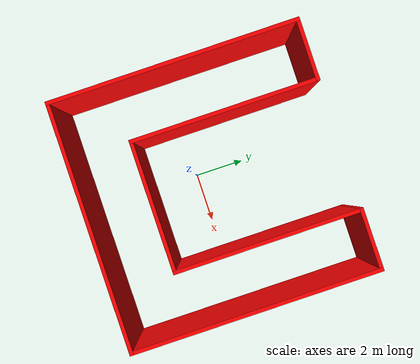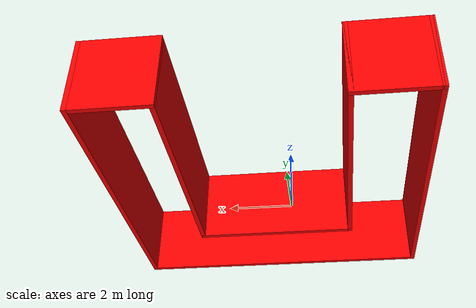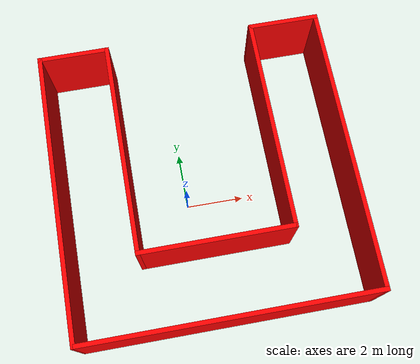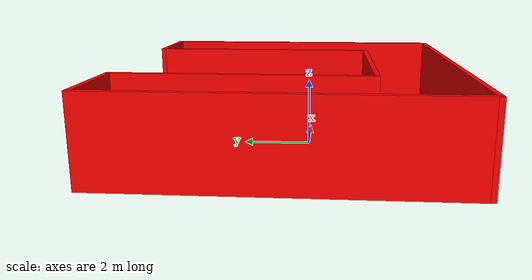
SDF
<?xml version='1.0'?>
<sdf version='1.6'>
  <model name='world'>
    <pose frame=''>0.686196 0.551003 0 0 -0 0</pose>
    <link name='Wall_13'>
      <collision name='Wall_13_Collision'>
        <geometry>
          <box>
            <size>10 0.15 2.5</size>
          </box>
        </geometry>
        <pose frame=''>0 0 1.25 0 -0 0</pose>
      </collision>
      <visual name='Wall_13_Visual'>
        <pose frame=''>0 0 1.25 0 -0 0</pose>
        <geometry>
          <box>
            <size>10 0.15 2.5</size>
          </box>
        </geometry>
        <material>
          <script>
            <uri>file://media/materials/scripts/gazebo.material</uri>
            <name>Gazebo/Grey</name>
          </script>
          <ambient>1 0 0 1</ambient>
        </material>
        <meta>
          <layer>0</layer>
        </meta>
      </visual>
      <pose frame=''>-4.925 0 0 0 -0 1.57084</pose>
    </link>
    <link name='Wall_15'>
      <collision name='Wall_15_Collision'>
        <geometry>
          <box>
            <size>10 0.15 2.5</size>
          </box>
        </geometry>
        <pose frame=''>0 0 1.25 0 -0 0</pose>
      </collision>
      <visual name='Wall_15_Visual'>
        <pose frame=''>0 0 1.25 0 -0 0</pose>
        <geometry>
          <box>
            <size>10 0.15 2.5</size>
          </box>
        </geometry>
        <material>
          <script>
            <uri>file://media/materials/scripts/gazebo.material</uri>
            <name>Gazebo/Grey</name>
          </script>
          <ambient>1 0 0 1</ambient>
        </material>
        <meta>
          <layer>0</layer>
        </meta>
      </visual>
      <pose frame=''>0.000195 -4.925 0 0 -0 0</pose>
    </link>
    <link name='Wall_17'>
      <collision name='Wall_17_Collision'>
        <geometry>
          <box>
            <size>2.5 0.15 2.5</size>
          </box>
        </geometry>
        <pose frame=''>0 0 1.25 0 -0 0</pose>
      </collision>
      <visual name='Wall_17_Visual'>
        <pose frame=''>0 0 1.25 0 -0 0</pose>
        <geometry>
          <box>
            <size>2.5 0.15 2.5</size>
          </box>
        </geometry>
        <material>
          <script>
            <uri>file://media/materials/scripts/gazebo.material</uri>
            <name>Gazebo/Grey</name>
          </script>
          <ambient>1 0 0 1</ambient>
        </material>
        <meta>
          <layer>0</layer>
        </meta>
      </visual>
      <pose frame=''>-3.7502 4.925 0 0 -0 0</pose>
    </link>
    <link name='Wall_19'>
      <collision name='Wall_19_Collision'>
        <geometry>
          <box>
            <size>7.5 0.15 2.5</size>
          </box>
        </geometry>
        <pose frame=''>0 0 1.25 0 -0 0</pose>
      </collision>
      <visual name='Wall_19_Visual'>
        <pose frame=''>0 0 1.25 0 -0 0</pose>
        <geometry>
          <box>
            <size>7.5 0.15 2.5</size>
          </box>
        </geometry>
        <material>
          <script>
            <uri>file://media/materials/scripts/gazebo.material</uri>
            <name>Gazebo/Grey</name>
          </script>
          <ambient>1 0 0 1</ambient>
        </material>
        <meta>
          <layer>0</layer>
        </meta>
      </visual>
      <pose frame=''>-2.5752 1.25 0 0 0 -1.5708</pose>
    </link>
    <link name='Wall_21'>
      <collision name='Wall_21_Collision'>
        <geometry>
          <box>
            <size>10 0.15 2.5</size>
          </box>
        </geometry>
        <pose frame=''>0 0 1.25 0 -0 0</pose>
      </collision>
      <visual name='Wall_21_Visual'>
        <pose frame=''>0 0 1.25 0 -0 0</pose>
        <geometry>
          <box>
            <size>10 0.15 2.5</size>
          </box>
        </geometry>
        <material>
          <script>
            <uri>file://media/materials/scripts/gazebo.material</uri>
            <name>Gazebo/Grey</name>
          </script>
          <ambient>1 0 0 1</ambient>
        </material>
        <meta>
          <layer>0</layer>
        </meta>
      </visual>
      <pose frame=''>4.925 0 0 0 -0 1.57084</pose>
    </link>
    <link name='Wall_23'>
      <collision name='Wall_23_Collision'>
        <geometry>
          <box>
            <size>2.5 0.15 2.5</size>
          </box>
        </geometry>
        <pose frame=''>0 0 1.25 0 -0 0</pose>
      </collision>
      <visual name='Wall_23_Visual'>
        <pose frame=''>0 0 1.25 0 -0 0</pose>
        <geometry>
          <box>
            <size>2.5 0.15 2.5</size>
          </box>
        </geometry>
        <material>
          <script>
            <uri>file://media/materials/scripts/gazebo.material</uri>
            <name>Gazebo/Grey</name>
          </script>
          <ambient>1 0 0 1</ambient>
        </material>
        <meta>
          <layer>0</layer>
        </meta>
      </visual>
      <pose frame=''>3.7498 4.925 0 0 -0 3.14159</pose>
    </link>
    <link name='Wall_25'>
      <collision name='Wall_25_Collision'>
        <geometry>
          <box>
            <size>7.5 0.15 2.5</size>
          </box>
        </geometry>
        <pose frame=''>0 0 1.25 0 -0 0</pose>
      </collision>
      <visual name='Wall_25_Visual'>
        <pose frame=''>0 0 1.25 0 -0 0</pose>
        <geometry>
          <box>
            <size>7.5 0.15 2.5</size>
          </box>
        </geometry>
        <material>
          <script>
            <uri>file://media/materials/scripts/gazebo.material</uri>
            <name>Gazebo/Grey</name>
          </script>
          <ambient>1 0 0 1</ambient>
        </material>
        <meta>
          <layer>0</layer>
        </meta>
      </visual>
      <pose frame=''>2.5748 1.25 0 0 0 -1.5708</pose>
    </link>
    <link name='Wall_27'>
      <collision name='Wall_27_Collision'>
        <geometry>
          <box>
            <size>5.3 0.15 2.5</size>
          </box>
        </geometry>
        <pose frame=''>0 0 1.25 0 -0 0</pose>
      </collision>
      <visual name='Wall_27_Visual'>
        <pose frame=''>0 0 1.25 0 -0 0</pose>
        <geometry>
          <box>
            <size>5.3 0.15 2.5</size>
          </box>
        </geometry>
        <material>
          <script>
            <uri>file://media/materials/scripts/gazebo.material</uri>
            <name>Gazebo/Grey</name>
          </script>
          <ambient>1 0 0 1</ambient>
        </material>
        <meta>
          <layer>0</layer>
        </meta>
      </visual>
      <pose frame=''>-0.000196 -2.425 0 0 -0 3.14159</pose>
    </link>
    <static>1</static>
  </model>
</sdf>
